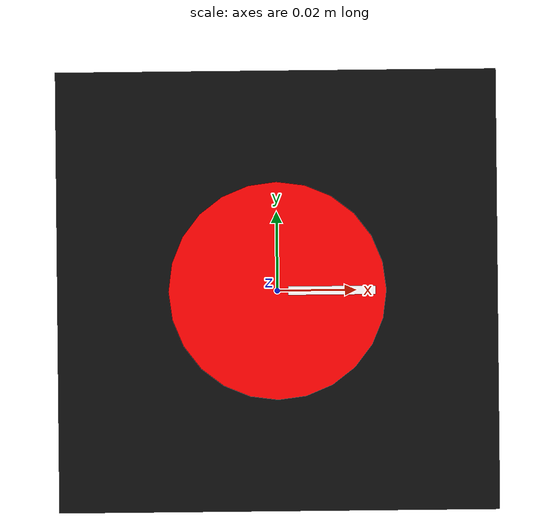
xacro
<?xml version="1.0"?>
<robot xmlns:xacro="http://www.ros.org/wiki/xacro" name="qube_scene">

<xacro:arg name="baud_rate" default="115200"/> <!--Communication baud rate of Arduino-->
<xacro:arg name="device" default="none"/> <!--Name of USB device-->
<xacro:arg name="simulation" default="false"/> <!--Whether this should be run as a simulation-->

<xacro:include filename="$(find qube_driver)/ros2_control/qube_driver.ros2_control.xacro"/>
<xacro:qube_driver_ros2_control
    name="driver_"
    prefix=""
    baud_rate="$(arg baud_rate)"
    device="$(arg device)"
    simulation="$(arg simulation)"/>

<xacro:include filename="$(find qube_description)/urdf/qube.macro.xacro"/>
<xacro:qube prefix=""/> <!--Prefix of this must match Qube macro prefix-->

<link name="world"/>
<joint name="world_to_base" type="fixed">
<parent link="world"/>
<child link="base_link"/>
<origin xyz="0 0 0" rpy="0 0 0"/>
</joint>

</robot>

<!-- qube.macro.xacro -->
<robot xmlns:xacro="http://www.ros.org/wiki/xacro">
  <xacro:macro name="qube" params="prefix">

    <xacro:property name="box_x" value="0.102"/>
    <xacro:property name="box_y" value="0.102"/>
    <xacro:property name="box_z" value="0.102"/>

    <xacro:property name="disk_radius" value="0.025"/>
    <xacro:property name="disk_length" value="0.01"/>

    <xacro:property name="indicator_x" value="0.020"/>
    <xacro:property name="indicator_y" value="0.002"/>
    <xacro:property name="indicator_z" value="0.0015"/>

    <material name="black">
      <color rgba="0.05 0.05 0.05 1"/>
    </material>

    <material name="white">
      <color rgba="1 1 1 1"/>
    </material>

    <material name="red">
      <color rgba="1 0 0 1"/>
    </material>

    <link name="${prefix}base_link"/>

    <link name="${prefix}body_link">
      <visual>
        <origin xyz="0 0 0" rpy="0 0 0"/>
        <geometry>
          <box size="${box_x} ${box_y} ${box_z}"/>
        </geometry>
        <material name="black"/>
      </visual>
    </link>

    <link name="${prefix}disk_link">
      <visual>
        <origin xyz="0 0 0" rpy="0 0 0"/>
        <geometry>
          <cylinder radius="${disk_radius}" length="${disk_length}"/>
        </geometry>
        <material name="red"/>
      </visual>
    </link>

    <link name="${prefix}indicator_link">
      <visual>
        <origin xyz="${disk_radius/2} 0 ${disk_length/2 + indicator_z/2}" rpy="0 0 0"/>
        <geometry>
          <box size="${indicator_x} ${indicator_y} ${indicator_z}"/>
        </geometry>
        <material name="white"/>
      </visual>
    </link>

    <joint name="${prefix}body_joint" type="fixed">
      <parent link="${prefix}base_link"/>
      <child link="${prefix}body_link"/>
      <origin xyz="0 0 ${box_z/2}"/>
    </joint>

    <joint name="${prefix}motor_joint" type="revolute">
      <parent link="${prefix}body_link"/>
      <child link="${prefix}disk_link"/>
      <origin xyz="0 0 ${box_z/2 + disk_length/2}"/>
      <axis xyz="0 0 -1"/>
      <limit lower="-1.5708" upper="1.5708" effort="100" velocity="100"/>
    </joint>

    <joint name="${prefix}indicator_joint" type="fixed">
      <parent link="${prefix}disk_link"/>
      <child link="${prefix}indicator_link"/>
      <origin xyz="0 0 0"/>
    </joint>

  </xacro:macro>
</robot>
